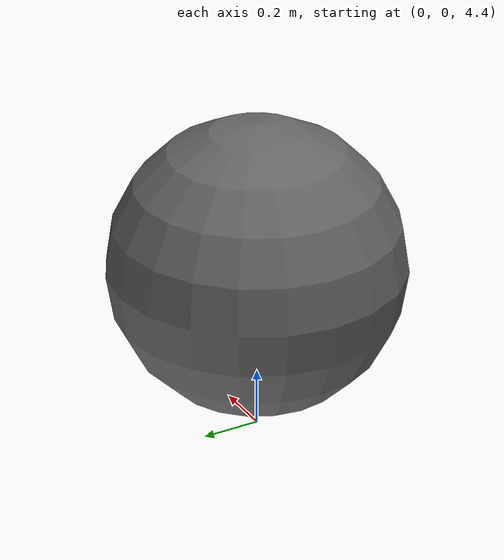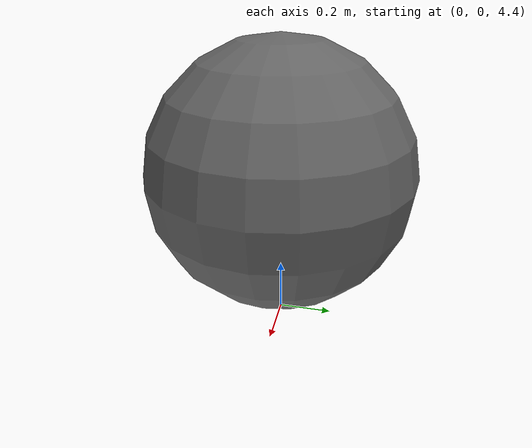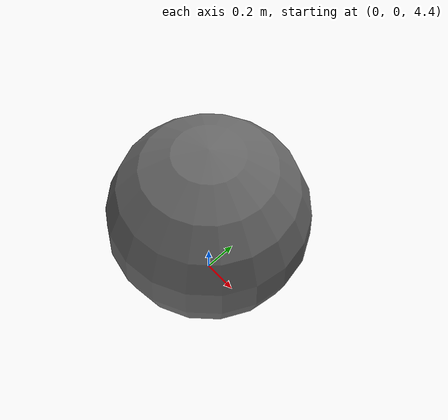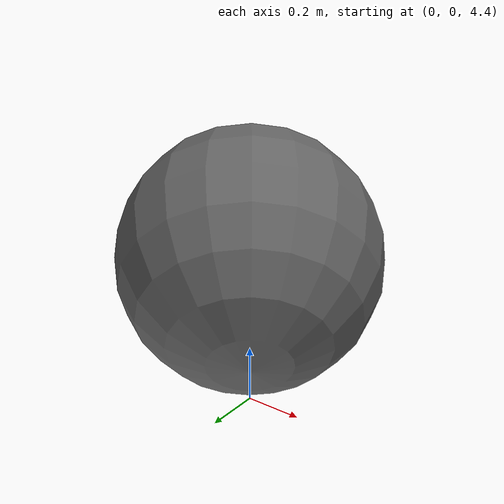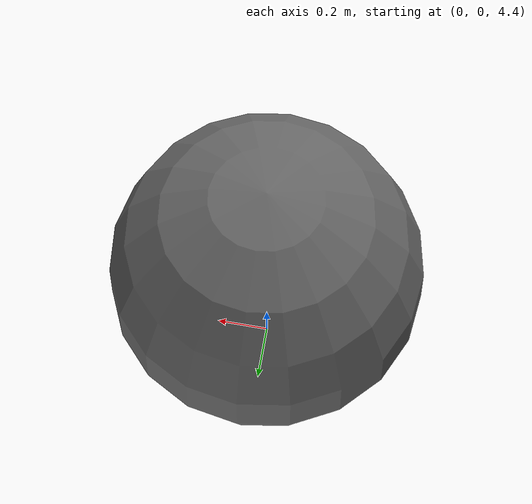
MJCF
<mujoco>
  <compiler angle="degree" coordinate="local" inertiafromgeom="true"/>
  <option integrator="RK4" timestep="0.003" gravity="0 0 -9.7"/>
  <default>
  </default>
  <asset>
    <texture builtin="gradient" height="100" rgb1="1 1 1" rgb2="0 0 0" type="skybox" width="100"/>
    <texture builtin="flat" height="1278" mark="cross" markrgb="1 1 1" name="texgeom" random="0.01" rgb1="0.8 0.6 0.4" rgb2="0.8 0.6 0.4" type="cube" width="127"/>
    <texture builtin="checker" height="100" name="texplane" rgb1="0 0 0" rgb2="0.8 0.8 0.8" type="2d" width="100"/>
    <material name="MatPlane" reflectance="0.5" shininess="1" specular="1" texrepeat="30 30" texture="texplane"/>
    <material name="geom" texture="texgeom" texuniform="true"/>
  </asset>
  <worldbody>
    <light cutoff="100" diffuse="1 1 1" dir="-0 0 -1.3" directional="true" exponent="1" pos="0 0 1.3" specular=".1 .1 .1"/>
    <geom material="MatPlane" name="floor" pos="0 0 0" rgba="0.8 0.9 0.8 1" size="40 40 40" type="plane"/>
    <body name="torso" pos="0 0 5">
      <joint armature="0" damping="0" limited="false" name="root" pos="0 0 0" stiffness="0" type="free"/>
      <geom material="MatPlane" name="pointarrow" pos="0 0 0" size="0.5" type="sphere"/>
      <body name="base1" pos="0 0 0">
        <geom material="MatPlane" name="pointbody1" pos="0 0 0" size="0.25" type="sphere"/>
        <joint axis="0 0 1" limited="false" name="rot5" pos="0 0 0" type="hinge"/>
          <joint axis="0 1 0" limited="false" name="rot1" pos="0 0 0" type="hinge"/>
      </body>
    </body>
  </worldbody>
  <actuator>
    <!-- Those are just dummy actuators for providing ranges -->
    <motor ctrllimited="true" ctrlrange="-25 25" joint="rot1"/>
  </actuator>
</mujoco>
